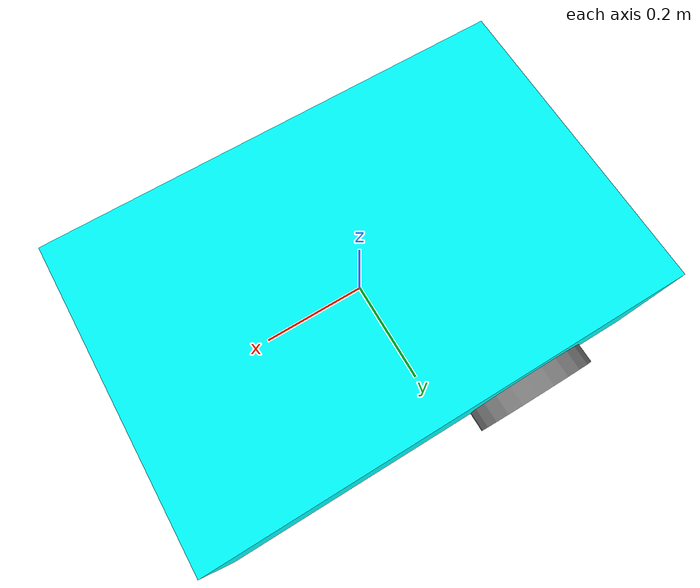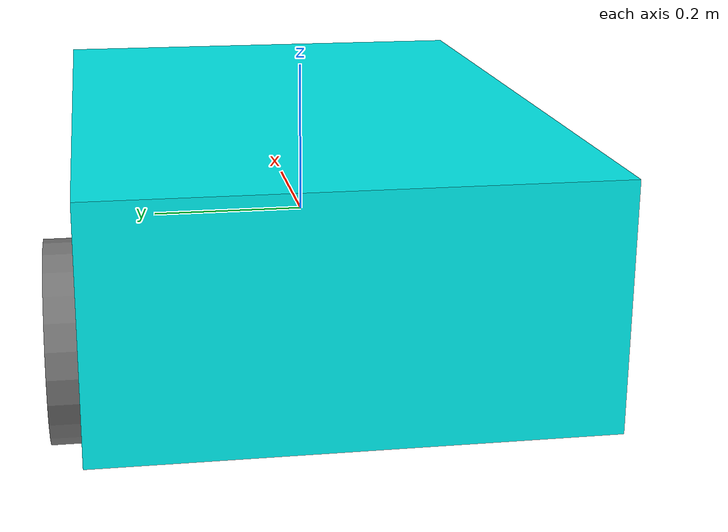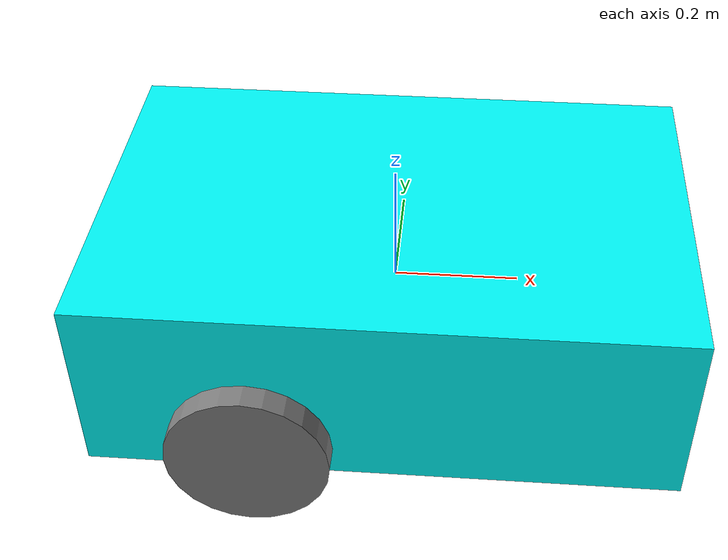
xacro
<?xml version="1.0"?>
<robot xmlns:xacro="http://www.ros.org/wiki/xacro">

    <xacro:property name="base_width" value="0.61" />
    <xacro:property name="base_length" value="0.92" />
    <xacro:property name="base_height" value="0.3" />

    <xacro:property name="wheel_radius" value="0.127" />
    <xacro:property name="wheel_width" value="0.04" />
    <xacro:property name="wheel_ygap" value="0.02" />
    <xacro:property name="wheel_zoff" value="0.1" />
    <xacro:property name="wheel_xoff" value="0.2" />

    <xacro:property name="caster_xoff" value="0.24" />

    <!-- Define intertial property macros  -->
    <xacro:macro name="box_inertia" params="m w h d">
        <inertial>
            <origin xyz="0 0 0" rpy="${pi/2} 0 ${pi/2}" />
            <mass value="${m}" />
            <inertia ixx="${(m/12) * (h*h + d*d)}" ixy="0.0" ixz="0.0" iyy="${(m/12) * (w*w + d*d)}"
                iyz="0.0" izz="${(m/12) * (w*w + h*h)}" />
        </inertial>
    </xacro:macro>

    <xacro:macro name="cylinder_inertia" params="m r h">
        <inertial>
            <origin xyz="0 0 0" rpy="${pi/2} 0 0" />
            <mass value="${m}" />
            <inertia ixx="${(m/12) * (3*r*r + h*h)}" ixy="0" ixz="0" iyy="${(m/12) * (3*r*r + h*h)}"
                iyz="0" izz="${(m/2) * (r*r)}" />
        </inertial>
    </xacro:macro>

    <xacro:macro name="sphere_inertia" params="m r">
        <inertial>
            <mass value="${m}" />
            <inertia ixx="${(2/5) * m * (r*r)}" ixy="0.0" ixz="0.0" iyy="${(2/5) * m * (r*r)}"
                iyz="0.0" izz="${(2/5) * m * (r*r)}" />
        </inertial>
    </xacro:macro>

    <!-- Robot Base -->
    <link name="base_link">
        <visual>
            <geometry>
                <box size="${base_length} ${base_width} ${base_height}" />
            </geometry>
            <material name="Cyan">
                <color rgba="0 1.0 1.0 1.0" />
            </material>
        </visual>
        <collision>
            <geometry>
                <box size="${base_length} ${base_width} ${base_height}" />
            </geometry>
        </collision>

        <xacro:box_inertia m="15" w="${base_width}" d="${base_length}" h="${base_height}" />
    </link>

    <!-- Robot Footprint -->
    <link name="base_footprint" />

    <joint name="base_joint" type="fixed">
        <parent link="base_link" />
        <child link="base_footprint" />
        <origin xyz="0.0 0.0 ${-(wheel_radius+wheel_zoff)}" rpy="0 0 0" />
    </joint>

    <!-- Wheels -->
    <xacro:macro name="wheel" params="prefix x_reflect y_reflect">
        <link name="${prefix}_link">
            <visual>
                <origin xyz="0 0 0" rpy="${pi/2} 0 0" />
                <geometry>
                    <cylinder radius="${wheel_radius}" length="${wheel_width}" />
                </geometry>
                <material name="Gray">
                    <color rgba="0.5 0.5 0.5 1.0" />
                </material>
            </visual>
            <collision>
                <origin xyz="0 0 0" rpy="${pi/2} 0 0" />
                <geometry>
                    <cylinder radius="${wheel_radius}" length="${wheel_width}" />
                </geometry>
            </collision>

            <xacro:cylinder_inertia m="0.5" r="${wheel_radius}" h="${wheel_width}" />
        </link>

        <gazebo reference="${prefix}_link">
            <material>Gazebo/Black</material>
        </gazebo>

        <joint name="${prefix}_joint" type="continuous">
            <parent link="base_link" />
            <child link="${prefix}_link" />
            <origin
                xyz="${x_reflect*wheel_xoff} ${y_reflect*(base_width/2+wheel_ygap)} ${-wheel_zoff}"
                rpy="0 0 0" />
            <axis xyz="0 1 0" />
        </joint>
    </xacro:macro>

    <xacro:wheel prefix="drivewhl_l" x_reflect="-1" y_reflect="1" />
    <xacro:wheel prefix="drivewhl_r" x_reflect="-1" y_reflect="-1" />

    <!-- Caster Wheel -->
    <link name="front_r_caster">
        <visual>
            <geometry>
                <sphere radius="${(wheel_radius+wheel_zoff-(base_height/2))}" />
            </geometry>
            <material name="Cyan">
                <color rgba="0 1.0 1.0 1.0" />
            </material>
        </visual>

        <collision>
            <origin xyz="0 0 0" rpy="0 0 0" />
            <geometry>
                <sphere radius="${(wheel_radius+wheel_zoff-(base_height/2))}" />
            </geometry>
        </collision>

        <xacro:sphere_inertia m="0.5" r="${(wheel_radius+wheel_zoff-(base_height/2))}" />

    </link>

    <gazebo reference="front_r_caster">
        <material>Gazebo/Black</material>
        <mu1 value="0.001"/>
        <mu2 value="0.001"/>
    </gazebo>

    <joint name="caster_r_joint" type="fixed">
        <parent link="base_link" />
        <child link="front_r_caster" />
        <origin xyz="${caster_xoff} 0.14 ${-(base_height/2)}" rpy="0 0 0" />
    </joint>

    <link name="front_l_caster">
        <visual>
            <geometry>
                <sphere radius="${(wheel_radius+wheel_zoff-(base_height/2))}" />
            </geometry>
            <material name="Cyan">
                <color rgba="0 1.0 1.0 1.0" />
            </material>
        </visual>

        <collision>
            <origin xyz="0 0 0" rpy="0 0 0" />
            <geometry>
                <sphere radius="${(wheel_radius+wheel_zoff-(base_height/2))}" />
            </geometry>
        </collision>

        <xacro:sphere_inertia m="0.5" r="${(wheel_radius+wheel_zoff-(base_height/2))}" />

    </link>

    <gazebo reference="front_l_caster">
        <material>Gazebo/Black</material>
        <mu1 value="0.001"/>
        <mu2 value="0.001"/>
    </gazebo>

    <joint name="caster_l_joint" type="fixed">
        <parent link="base_link" />
        <child link="front_l_caster" />
        <origin xyz="${caster_xoff} -0.14 ${-(base_height/2)}" rpy="0 0 0" />
    </joint>
</robot>
